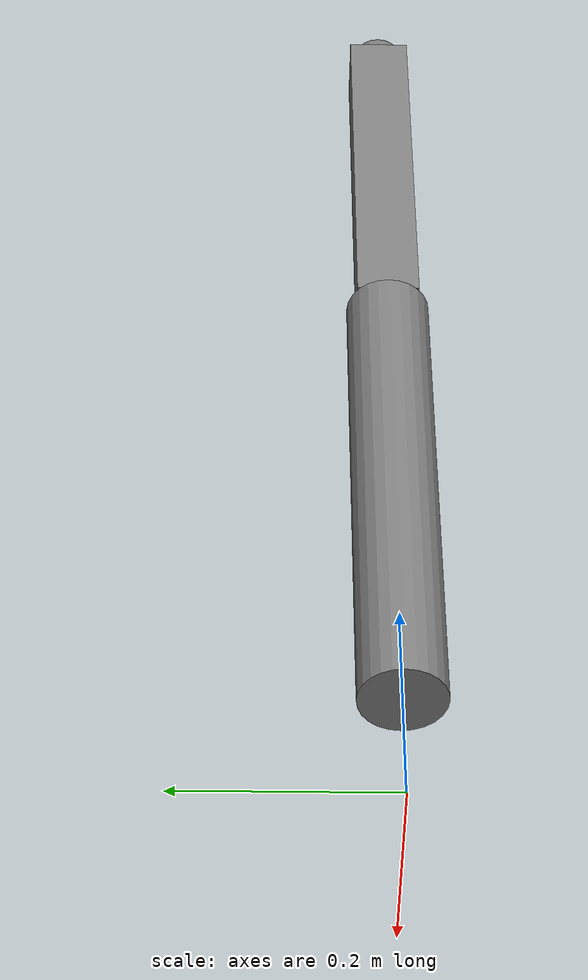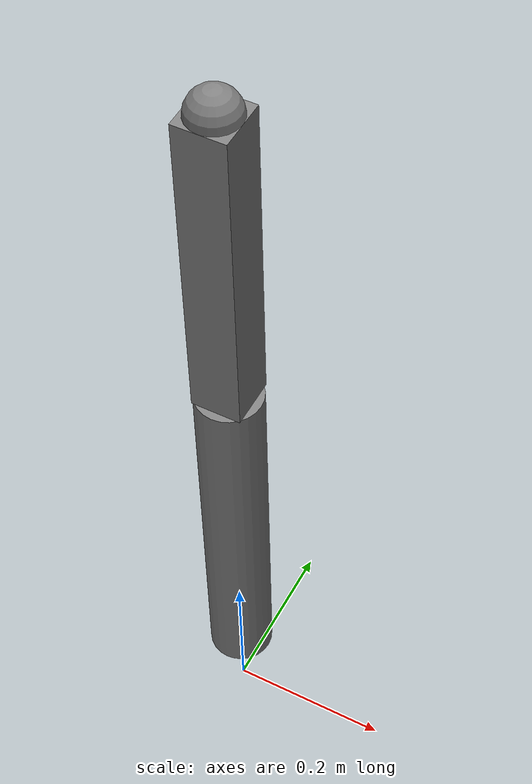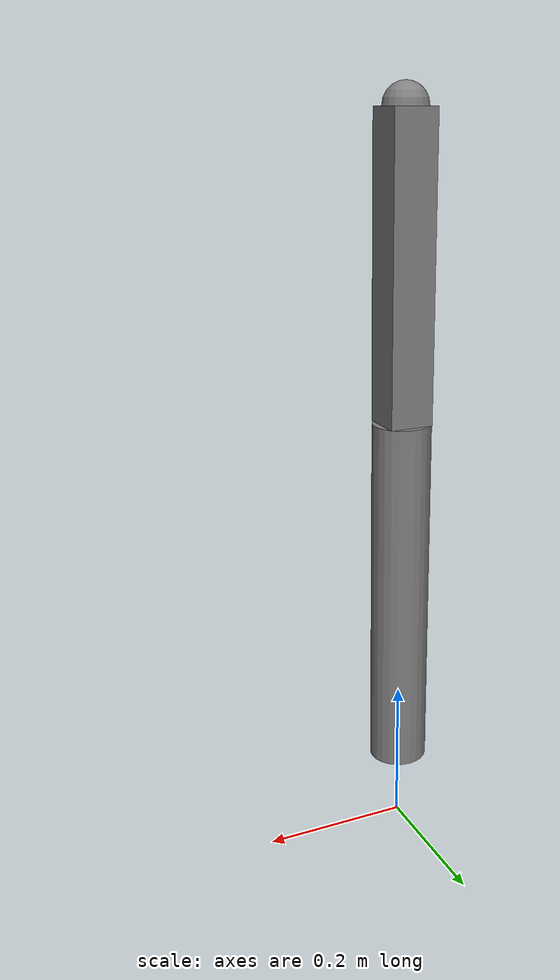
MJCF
<mujoco model="test_arm">
    <option gravity="0 0 -9.81" timestep="0.002"/>
    <compiler angle="radian" eulerseq="xyz" fusestatic="true" discardvisual="true"/>

    <worldbody>
        <body name="base_link" pos="0 0 0">
            <inertial mass="5.0" diaginertia="0.5 0.5 0.5"/>
            <body name="upper_arm" pos="0 0 0.1">
                <joint name="shoulder" type="hinge" axis="0 1 0" limited="true" range="-3.14 3.14"/>
                <inertial mass="1.0" pos="0 0 0.25" diaginertia="0.02 0.02 0.005"/>
                <geom type="cylinder" size="0.04 0.25" pos="0 0 0.25"/>
                <body name="forearm" pos="0 0 0.5">
                    <joint name="elbow" type="hinge" axis="0 1 0" limited="true" range="-2.0 2.0"/>
                    <inertial mass="0.5" pos="0 0 0.2" diaginertia="0.01 0.01 0.002"/>
                    <geom type="box" size="0.03 0.03 0.2" pos="0 0 0.2"/>
                    <body name="gripper" pos="0 0 0.4">
                        <joint name="grip" type="slide" axis="0 0 1" limited="true" range="0 0.05"/>
                        <inertial mass="0.2" diaginertia="0.001 0.001 0.001"/>
                        <geom type="sphere" size="0.03"/>
                    </body>
                </body>
            </body>
        </body>
    </worldbody>
</mujoco>
